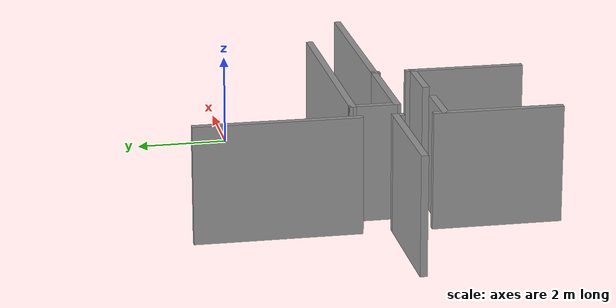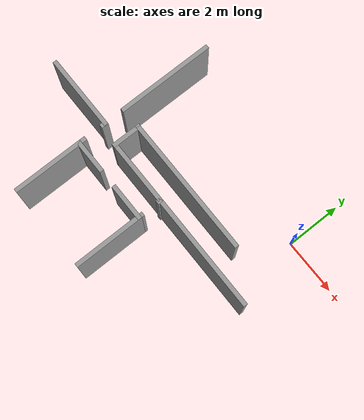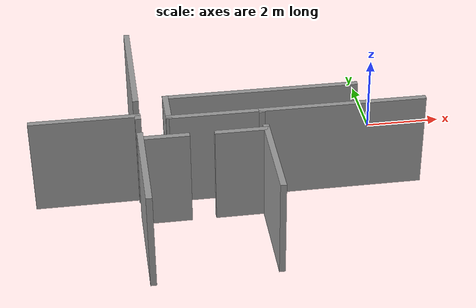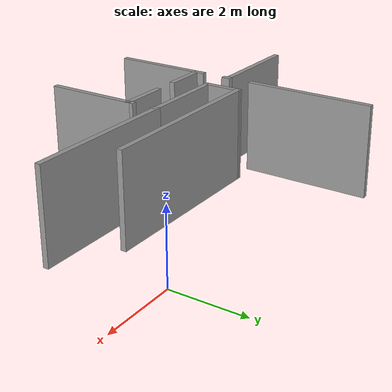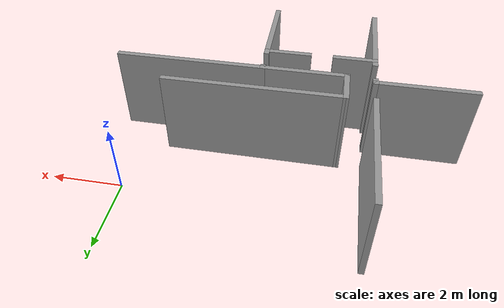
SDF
<sdf version="1.6">
 <model name="melgar_house">
  <link name="Wall_101">
   <pose>-3.42579 -4.781 0 0 0 -1.5708</pose>
   <visual name="Wall_101_Visual">
    <pose>0 0 1.25 0 -0 0</pose>
    <geometry><box><size>2.5 0.15 2.5</size></box></geometry>
    <material>
     <script><uri>file://media/materials/scripts/gazebo.material</uri><name>Gazebo/Grey</name></script>
     <ambient>1 1 1 1</ambient>
     <shader type="pixel"/>
     <diffuse>0.7 0.7 0.7 1</diffuse>
     <specular>0.01 0.01 0.01 1</specular>
     <emissive>0 0 0 1</emissive>
    </material>
    <meta><layer>0</layer></meta>
   </visual>
   <collision name="Wall_101_Collision">
    <pose>0 0 1.25 0 -0 0</pose>
    <geometry><box><size>2.5 0.15 2.5</size></box></geometry>
    <surface>
     <friction>
      <ode><mu>1</mu><mu2>1</mu2><fdir1>0 0 0</fdir1><slip1>0</slip1><slip2>0</slip2></ode>
      <torsional>
       <coefficient>1</coefficient>
       <patch_radius>0</patch_radius>
       <surface_radius>0</surface_radius>
       <use_patch_radius>1</use_patch_radius>
       <ode><slip>0</slip></ode>
      </torsional>
     </friction>
     <bounce><restitution_coefficient>0</restitution_coefficient><threshold>1e+06</threshold></bounce>
     <contact>
      <collide_without_contact>0</collide_without_contact>
      <collide_without_contact_bitmask>1</collide_without_contact_bitmask>
      <collide_bitmask>1</collide_bitmask>
      <ode>
       <soft_cfm>0</soft_cfm>
       <soft_erp>0.2</soft_erp>
       <kp>1e+13</kp>
       <kd>1</kd>
       <max_vel>0.01</max_vel>
       <min_depth>0</min_depth>
      </ode>
      <bullet>
       <split_impulse>1</split_impulse>
       <split_impulse_penetration_threshold>-0.01</split_impulse_penetration_threshold>
       <soft_cfm>0</soft_cfm>
       <soft_erp>0.2</soft_erp>
       <kp>1e+13</kp>
       <kd>1</kd>
      </bullet>
     </contact>
    </surface>
   </collision>
  </link>
  <link name="Wall_113">
   <pose>-3.30354 -1.82115 0 0 -0 0</pose>
   <visual name="Wall_113_Visual">
    <pose>0 0 1.25 0 -0 0</pose>
    <geometry><box><size>5 0.15 2.5</size></box></geometry>
    <material>
     <script><uri>file://media/materials/scripts/gazebo.material</uri><name>Gazebo/Grey</name></script>
     <ambient>1 1 1 1</ambient>
     <shader type="pixel"/>
     <diffuse>0.7 0.7 0.7 1</diffuse>
     <specular>0.01 0.01 0.01 1</specular>
     <emissive>0 0 0 1</emissive>
    </material>
    <meta><layer>0</layer></meta>
   </visual>
   <collision name="Wall_113_Collision">
    <pose>0 0 1.25 0 -0 0</pose>
    <geometry><box><size>5 0.15 2.5</size></box></geometry>
    <surface>
     <friction>
      <ode><mu>1</mu><mu2>1</mu2><fdir1>0 0 0</fdir1><slip1>0</slip1><slip2>0</slip2></ode>
      <torsional>
       <coefficient>1</coefficient>
       <patch_radius>0</patch_radius>
       <surface_radius>0</surface_radius>
       <use_patch_radius>1</use_patch_radius>
       <ode><slip>0</slip></ode>
      </torsional>
     </friction>
     <bounce><restitution_coefficient>0</restitution_coefficient><threshold>1e+06</threshold></bounce>
     <contact>
      <collide_without_contact>0</collide_without_contact>
      <collide_without_contact_bitmask>1</collide_without_contact_bitmask>
      <collide_bitmask>1</collide_bitmask>
      <ode>
       <soft_cfm>0</soft_cfm>
       <soft_erp>0.2</soft_erp>
       <kp>1e+13</kp>
       <kd>1</kd>
       <max_vel>0.01</max_vel>
       <min_depth>0</min_depth>
      </ode>
      <bullet>
       <split_impulse>1</split_impulse>
       <split_impulse_penetration_threshold>-0.01</split_impulse_penetration_threshold>
       <soft_cfm>0</soft_cfm>
       <soft_erp>0.2</soft_erp>
       <kp>1e+13</kp>
       <kd>1</kd>
      </bullet>
     </contact>
    </surface>
   </collision>
  </link>
  <link name="Wall_57">
   <pose>-6.47854 -0.146147 0 0 0 -1.5708</pose>
   <visual name="Wall_57_Visual">
    <pose>0 0 1.25 0 -0 0</pose>
    <geometry><box><size>3.5 0.15 2.5</size></box></geometry>
    <material>
     <script><uri>file://media/materials/scripts/gazebo.material</uri><name>Gazebo/Grey</name></script>
     <ambient>1 1 1 1</ambient>
     <shader type="pixel"/>
     <diffuse>0.7 0.7 0.7 1</diffuse>
     <specular>0.01 0.01 0.01 1</specular>
     <emissive>0 0 0 1</emissive>
    </material>
    <meta><layer>0</layer></meta>
   </visual>
   <collision name="Wall_57_Collision">
    <pose>0 0 1.25 0 -0 0</pose>
    <geometry><box><size>3.5 0.15 2.5</size></box></geometry>
    <surface>
     <friction>
      <ode><mu>1</mu><mu2>1</mu2><fdir1>0 0 0</fdir1><slip1>0</slip1><slip2>0</slip2></ode>
      <torsional>
       <coefficient>1</coefficient>
       <patch_radius>0</patch_radius>
       <surface_radius>0</surface_radius>
       <use_patch_radius>1</use_patch_radius>
       <ode><slip>0</slip></ode>
      </torsional>
     </friction>
     <bounce><restitution_coefficient>0</restitution_coefficient><threshold>1e+06</threshold></bounce>
     <contact>
      <collide_without_contact>0</collide_without_contact>
      <collide_without_contact_bitmask>1</collide_without_contact_bitmask>
      <collide_bitmask>1</collide_bitmask>
      <ode>
       <soft_cfm>0</soft_cfm>
       <soft_erp>0.2</soft_erp>
       <kp>1e+13</kp>
       <kd>1</kd>
       <max_vel>0.01</max_vel>
       <min_depth>0</min_depth>
      </ode>
      <bullet>
       <split_impulse>1</split_impulse>
       <split_impulse_penetration_threshold>-0.01</split_impulse_penetration_threshold>
       <soft_cfm>0</soft_cfm>
       <soft_erp>0.2</soft_erp>
       <kp>1e+13</kp>
       <kd>1</kd>
      </bullet>
     </contact>
    </surface>
   </collision>
  </link>
  <link name="Wall_64">
   <pose>-6.47854 -2.62115 0 0 0 -1.5708</pose>
   <visual name="Wall_64_Visual">
    <pose>0 0 1.25 0 -0 0</pose>
    <geometry><box><size>0.25 0.15 2.5</size></box></geometry>
    <material>
     <script><uri>file://media/materials/scripts/gazebo.material</uri><name>Gazebo/Grey</name></script>
     <ambient>1 1 1 1</ambient>
     <shader type="pixel"/>
     <diffuse>0.7 0.7 0.7 1</diffuse>
     <specular>0.01 0.01 0.01 1</specular>
     <emissive>0 0 0 1</emissive>
    </material>
    <meta><layer>0</layer></meta>
   </visual>
   <collision name="Wall_64_Collision">
    <pose>0 0 1.25 0 -0 0</pose>
    <geometry><box><size>0.25 0.15 2.5</size></box></geometry>
    <surface>
     <friction>
      <ode><mu>1</mu><mu2>1</mu2><fdir1>0 0 0</fdir1><slip1>0</slip1><slip2>0</slip2></ode>
      <torsional>
       <coefficient>1</coefficient>
       <patch_radius>0</patch_radius>
       <surface_radius>0</surface_radius>
       <use_patch_radius>1</use_patch_radius>
       <ode><slip>0</slip></ode>
      </torsional>
     </friction>
     <bounce><restitution_coefficient>0</restitution_coefficient><threshold>1e+06</threshold></bounce>
     <contact>
      <collide_without_contact>0</collide_without_contact>
      <collide_without_contact_bitmask>1</collide_without_contact_bitmask>
      <collide_bitmask>1</collide_bitmask>
      <ode>
       <soft_cfm>0</soft_cfm>
       <soft_erp>0.2</soft_erp>
       <kp>1e+13</kp>
       <kd>1</kd>
       <max_vel>0.01</max_vel>
       <min_depth>0</min_depth>
      </ode>
      <bullet>
       <split_impulse>1</split_impulse>
       <split_impulse_penetration_threshold>-0.01</split_impulse_penetration_threshold>
       <soft_cfm>0</soft_cfm>
       <soft_erp>0.2</soft_erp>
       <kp>1e+13</kp>
       <kd>1</kd>
      </bullet>
     </contact>
    </surface>
   </collision>
  </link>
  <link name="Wall_67">
   <pose>-6.47854 -4.72115 0 0 0 -1.5708</pose>
   <visual name="Wall_67_Visual">
    <pose>0 0 1.25 0 -0 0</pose>
    <geometry><box><size>2.75 0.15 2.5</size></box></geometry>
    <material>
     <script><uri>file://media/materials/scripts/gazebo.material</uri><name>Gazebo/Grey</name></script>
     <ambient>1 1 1 1</ambient>
     <shader type="pixel"/>
     <diffuse>0.7 0.7 0.7 1</diffuse>
     <specular>0.01 0.01 0.01 1</specular>
     <emissive>0 0 0 1</emissive>
    </material>
    <meta><layer>0</layer></meta>
   </visual>
   <collision name="Wall_67_Collision">
    <pose>0 0 1.25 0 -0 0</pose>
    <geometry><box><size>2.75 0.15 2.5</size></box></geometry>
    <surface>
     <friction>
      <ode><mu>1</mu><mu2>1</mu2><fdir1>0 0 0</fdir1><slip1>0</slip1><slip2>0</slip2></ode>
      <torsional>
       <coefficient>1</coefficient>
       <patch_radius>0</patch_radius>
       <surface_radius>0</surface_radius>
       <use_patch_radius>1</use_patch_radius>
       <ode><slip>0</slip></ode>
      </torsional>
     </friction>
     <bounce><restitution_coefficient>0</restitution_coefficient><threshold>1e+06</threshold></bounce>
     <contact>
      <collide_without_contact>0</collide_without_contact>
      <collide_without_contact_bitmask>1</collide_without_contact_bitmask>
      <collide_bitmask>1</collide_bitmask>
      <ode>
       <soft_cfm>0</soft_cfm>
       <soft_erp>0.2</soft_erp>
       <kp>1e+13</kp>
       <kd>1</kd>
       <max_vel>0.01</max_vel>
       <min_depth>0</min_depth>
      </ode>
      <bullet>
       <split_impulse>1</split_impulse>
       <split_impulse_penetration_threshold>-0.01</split_impulse_penetration_threshold>
       <soft_cfm>0</soft_cfm>
       <soft_erp>0.2</soft_erp>
       <kp>1e+13</kp>
       <kd>1</kd>
      </bullet>
     </contact>
    </surface>
   </collision>
  </link>
  <link name="Wall_69">
   <pose>-7.77854 -2.57115 0 0 -0 3.14159</pose>
   <visual name="Wall_69_Visual">
    <pose>0 0 1.25 0 -0 0</pose>
    <geometry><box><size>2.75 0.15 2.5</size></box></geometry>
    <material>
     <script><uri>file://media/materials/scripts/gazebo.material</uri><name>Gazebo/Grey</name></script>
     <ambient>1 1 1 1</ambient>
     <shader type="pixel"/>
     <diffuse>0.7 0.7 0.7 1</diffuse>
     <specular>0.01 0.01 0.01 1</specular>
     <emissive>0 0 0 1</emissive>
    </material>
    <meta><layer>0</layer></meta>
   </visual>
   <collision name="Wall_69_Collision">
    <pose>0 0 1.25 0 -0 0</pose>
    <geometry><box><size>2.75 0.15 2.5</size></box></geometry>
    <surface>
     <friction>
      <ode><mu>1</mu><mu2>1</mu2><fdir1>0 0 0</fdir1><slip1>0</slip1><slip2>0</slip2></ode>
      <torsional>
       <coefficient>1</coefficient>
       <patch_radius>0</patch_radius>
       <surface_radius>0</surface_radius>
       <use_patch_radius>1</use_patch_radius>
       <ode><slip>0</slip></ode>
      </torsional>
     </friction>
     <bounce><restitution_coefficient>0</restitution_coefficient><threshold>1e+06</threshold></bounce>
     <contact>
      <collide_without_contact>0</collide_without_contact>
      <collide_without_contact_bitmask>1</collide_without_contact_bitmask>
      <collide_bitmask>1</collide_bitmask>
      <ode>
       <soft_cfm>0</soft_cfm>
       <soft_erp>0.2</soft_erp>
       <kp>1e+13</kp>
       <kd>1</kd>
       <max_vel>0.01</max_vel>
       <min_depth>0</min_depth>
      </ode>
      <bullet>
       <split_impulse>1</split_impulse>
       <split_impulse_penetration_threshold>-0.01</split_impulse_penetration_threshold>
       <soft_cfm>0</soft_cfm>
       <soft_erp>0.2</soft_erp>
       <kp>1e+13</kp>
       <kd>1</kd>
      </bullet>
     </contact>
    </surface>
   </collision>
  </link>
  <link name="Wall_76">
   <pose>-5.92579 -3.606 0 0 -0 0</pose>
   <visual name="Wall_76_Visual">
    <pose>0 0 1.25 0 -0 0</pose>
    <geometry><box><size>1.25 0.15 2.5</size></box></geometry>
    <material>
     <script><uri>file://media/materials/scripts/gazebo.material</uri><name>Gazebo/Grey</name></script>
     <ambient>1 1 1 1</ambient>
     <shader type="pixel"/>
     <diffuse>0.7 0.7 0.7 1</diffuse>
     <specular>0.01 0.01 0.01 1</specular>
     <emissive>0 0 0 1</emissive>
    </material>
    <meta><layer>0</layer></meta>
   </visual>
   <collision name="Wall_76_Collision">
    <pose>0 0 1.25 0 -0 0</pose>
    <geometry><box><size>1.25 0.15 2.5</size></box></geometry>
    <surface>
     <friction>
      <ode><mu>1</mu><mu2>1</mu2><fdir1>0 0 0</fdir1><slip1>0</slip1><slip2>0</slip2></ode>
      <torsional>
       <coefficient>1</coefficient>
       <patch_radius>0</patch_radius>
       <surface_radius>0</surface_radius>
       <use_patch_radius>1</use_patch_radius>
       <ode><slip>0</slip></ode>
      </torsional>
     </friction>
     <bounce><restitution_coefficient>0</restitution_coefficient><threshold>1e+06</threshold></bounce>
     <contact>
      <collide_without_contact>0</collide_without_contact>
      <collide_without_contact_bitmask>1</collide_without_contact_bitmask>
      <collide_bitmask>1</collide_bitmask>
      <ode>
       <soft_cfm>0</soft_cfm>
       <soft_erp>0.2</soft_erp>
       <kp>1e+13</kp>
       <kd>1</kd>
       <max_vel>0.01</max_vel>
       <min_depth>0</min_depth>
      </ode>
      <bullet>
       <split_impulse>1</split_impulse>
       <split_impulse_penetration_threshold>-0.01</split_impulse_penetration_threshold>
       <soft_cfm>0</soft_cfm>
       <soft_erp>0.2</soft_erp>
       <kp>1e+13</kp>
       <kd>1</kd>
      </bullet>
     </contact>
    </surface>
   </collision>
  </link>
  <link name="Wall_78">
   <pose>-4.02579 -3.606 0 0 -0 0</pose>
   <visual name="Wall_78_Visual">
    <pose>0 0 1.25 0 -0 0</pose>
    <geometry><box><size>1.35 0.15 2.5</size></box></geometry>
    <material>
     <script><uri>file://media/materials/scripts/gazebo.material</uri><name>Gazebo/Grey</name></script>
     <ambient>1 1 1 1</ambient>
     <shader type="pixel"/>
     <diffuse>0.7 0.7 0.7 1</diffuse>
     <specular>0.01 0.01 0.01 1</specular>
     <emissive>0 0 0 1</emissive>
    </material>
    <meta><layer>0</layer></meta>
   </visual>
   <collision name="Wall_78_Collision">
    <pose>0 0 1.25 0 -0 0</pose>
    <geometry><box><size>1.35 0.15 2.5</size></box></geometry>
    <surface>
     <friction>
      <ode><mu>1</mu><mu2>1</mu2><fdir1>0 0 0</fdir1><slip1>0</slip1><slip2>0</slip2></ode>
      <torsional>
       <coefficient>1</coefficient>
       <patch_radius>0</patch_radius>
       <surface_radius>0</surface_radius>
       <use_patch_radius>1</use_patch_radius>
       <ode><slip>0</slip></ode>
      </torsional>
     </friction>
     <bounce><restitution_coefficient>0</restitution_coefficient><threshold>1e+06</threshold></bounce>
     <contact>
      <collide_without_contact>0</collide_without_contact>
      <collide_without_contact_bitmask>1</collide_without_contact_bitmask>
      <collide_bitmask>1</collide_bitmask>
      <ode>
       <soft_cfm>0</soft_cfm>
       <soft_erp>0.2</soft_erp>
       <kp>1e+13</kp>
       <kd>1</kd>
       <max_vel>0.01</max_vel>
       <min_depth>0</min_depth>
      </ode>
      <bullet>
       <split_impulse>1</split_impulse>
       <split_impulse_penetration_threshold>-0.01</split_impulse_penetration_threshold>
       <soft_cfm>0</soft_cfm>
       <soft_erp>0.2</soft_erp>
       <kp>1e+13</kp>
       <kd>1</kd>
      </bullet>
     </contact>
    </surface>
   </collision>
  </link>
  <link name="Wall_79">
   <pose>-3.42579 -3.556 0 0 -0 1.5708</pose>
   <visual name="Wall_79_Visual">
    <pose>0 0 1.25 0 -0 0</pose>
    <geometry><box><size>0.25 0.15 2.5</size></box></geometry>
    <material>
     <script><uri>file://media/materials/scripts/gazebo.material</uri><name>Gazebo/Grey</name></script>
     <ambient>1 1 1 1</ambient>
     <shader type="pixel"/>
     <diffuse>0.7 0.7 0.7 1</diffuse>
     <specular>0.01 0.01 0.01 1</specular>
     <emissive>0 0 0 1</emissive>
    </material>
    <meta><layer>0</layer></meta>
   </visual>
   <collision name="Wall_79_Collision">
    <pose>0 0 1.25 0 -0 0</pose>
    <geometry><box><size>0.25 0.15 2.5</size></box></geometry>
    <surface>
     <friction>
      <ode><mu>1</mu><mu2>1</mu2><fdir1>0 0 0</fdir1><slip1>0</slip1><slip2>0</slip2></ode>
      <torsional>
       <coefficient>1</coefficient>
       <patch_radius>0</patch_radius>
       <surface_radius>0</surface_radius>
       <use_patch_radius>1</use_patch_radius>
       <ode><slip>0</slip></ode>
      </torsional>
     </friction>
     <bounce><restitution_coefficient>0</restitution_coefficient><threshold>1e+06</threshold></bounce>
     <contact>
      <collide_without_contact>0</collide_without_contact>
      <collide_without_contact_bitmask>1</collide_without_contact_bitmask>
      <collide_bitmask>1</collide_bitmask>
      <ode>
       <soft_cfm>0</soft_cfm>
       <soft_erp>0.2</soft_erp>
       <kp>1e+13</kp>
       <kd>1</kd>
       <max_vel>0.01</max_vel>
       <min_depth>0</min_depth>
      </ode>
      <bullet>
       <split_impulse>1</split_impulse>
       <split_impulse_penetration_threshold>-0.01</split_impulse_penetration_threshold>
       <soft_cfm>0</soft_cfm>
       <soft_erp>0.2</soft_erp>
       <kp>1e+13</kp>
       <kd>1</kd>
      </bullet>
     </contact>
    </surface>
   </collision>
  </link>
  <link name="Wall_81">
   <pose>-3.42585 -2.78079 0 0 0 -1.56808</pose>
   <visual name="Wall_81_Visual">
    <pose>0 0 1.25 0 -0 0</pose>
    <geometry><box><size>0.2 0.15 2.5</size></box></geometry>
    <material>
     <script><uri>file://media/materials/scripts/gazebo.material</uri><name>Gazebo/Grey</name></script>
     <ambient>1 1 1 1</ambient>
     <shader type="pixel"/>
     <diffuse>0.7 0.7 0.7 1</diffuse>
     <specular>0.01 0.01 0.01 1</specular>
     <emissive>0 0 0 1</emissive>
    </material>
    <meta><layer>0</layer></meta>
   </visual>
   <collision name="Wall_81_Collision">
    <pose>0 0 1.25 0 -0 0</pose>
    <geometry><box><size>0.2 0.15 2.5</size></box></geometry>
    <surface>
     <friction>
      <ode><mu>1</mu><mu2>1</mu2><fdir1>0 0 0</fdir1><slip1>0</slip1><slip2>0</slip2></ode>
      <torsional>
       <coefficient>1</coefficient>
       <patch_radius>0</patch_radius>
       <surface_radius>0</surface_radius>
       <use_patch_radius>1</use_patch_radius>
       <ode><slip>0</slip></ode>
      </torsional>
     </friction>
     <bounce><restitution_coefficient>0</restitution_coefficient><threshold>1e+06</threshold></bounce>
     <contact>
      <collide_without_contact>0</collide_without_contact>
      <collide_without_contact_bitmask>1</collide_without_contact_bitmask>
      <collide_bitmask>1</collide_bitmask>
      <ode>
       <soft_cfm>0</soft_cfm>
       <soft_erp>0.2</soft_erp>
       <kp>1e+13</kp>
       <kd>1</kd>
       <max_vel>0.01</max_vel>
       <min_depth>0</min_depth>
      </ode>
      <bullet>
       <split_impulse>1</split_impulse>
       <split_impulse_penetration_threshold>-0.01</split_impulse_penetration_threshold>
       <soft_cfm>0</soft_cfm>
       <soft_erp>0.2</soft_erp>
       <kp>1e+13</kp>
       <kd>1</kd>
      </bullet>
     </contact>
    </surface>
   </collision>
  </link>
  <link name="Wall_85">
   <pose>-4.57592 -2.75557 0 0 -0 3.14159</pose>
   <visual name="Wall_85_Visual">
    <pose>0 0 1.25 0 -0 0</pose>
    <geometry><box><size>2.45 0.15 2.5</size></box></geometry>
    <material>
     <script><uri>file://media/materials/scripts/gazebo.material</uri><name>Gazebo/Grey</name></script>
     <ambient>1 1 1 1</ambient>
     <shader type="pixel"/>
     <diffuse>0.7 0.7 0.7 1</diffuse>
     <specular>0.01 0.01 0.01 1</specular>
     <emissive>0 0 0 1</emissive>
    </material>
    <meta><layer>0</layer></meta>
   </visual>
   <collision name="Wall_85_Collision">
    <pose>0 0 1.25 0 -0 0</pose>
    <geometry><box><size>2.45 0.15 2.5</size></box></geometry>
    <surface>
     <friction>
      <ode><mu>1</mu><mu2>1</mu2><fdir1>0 0 0</fdir1><slip1>0</slip1><slip2>0</slip2></ode>
      <torsional>
       <coefficient>1</coefficient>
       <patch_radius>0</patch_radius>
       <surface_radius>0</surface_radius>
       <use_patch_radius>1</use_patch_radius>
       <ode><slip>0</slip></ode>
      </torsional>
     </friction>
     <bounce><restitution_coefficient>0</restitution_coefficient><threshold>1e+06</threshold></bounce>
     <contact>
      <collide_without_contact>0</collide_without_contact>
      <collide_without_contact_bitmask>1</collide_without_contact_bitmask>
      <collide_bitmask>1</collide_bitmask>
      <ode>
       <soft_cfm>0</soft_cfm>
       <soft_erp>0.2</soft_erp>
       <kp>1e+13</kp>
       <kd>1</kd>
       <max_vel>0.01</max_vel>
       <min_depth>0</min_depth>
      </ode>
      <bullet>
       <split_impulse>1</split_impulse>
       <split_impulse_penetration_threshold>-0.01</split_impulse_penetration_threshold>
       <soft_cfm>0</soft_cfm>
       <soft_erp>0.2</soft_erp>
       <kp>1e+13</kp>
       <kd>1</kd>
      </bullet>
     </contact>
    </surface>
   </collision>
  </link>
  <link name="Wall_95">
   <pose>-5.72723 -2.28836 0 0 0 -1.568</pose>
   <visual name="Wall_95_Visual">
    <pose>0 0 1.25 0 -0 0</pose>
    <geometry><box><size>1.08443 0.15 2.5</size></box></geometry>
    <material>
     <script><uri>file://media/materials/scripts/gazebo.material</uri><name>Gazebo/Grey</name></script>
     <ambient>1 1 1 1</ambient>
     <shader type="pixel"/>
     <diffuse>0.7 0.7 0.7 1</diffuse>
     <specular>0.01 0.01 0.01 1</specular>
     <emissive>0 0 0 1</emissive>
    </material>
    <meta><layer>0</layer></meta>
   </visual>
   <collision name="Wall_95_Collision">
    <pose>0 0 1.25 0 -0 0</pose>
    <geometry><box><size>1.08443 0.15 2.5</size></box></geometry>
    <surface>
     <friction>
      <ode><mu>1</mu><mu2>1</mu2><fdir1>0 0 0</fdir1><slip1>0</slip1><slip2>0</slip2></ode>
      <torsional>
       <coefficient>1</coefficient>
       <patch_radius>0</patch_radius>
       <surface_radius>0</surface_radius>
       <use_patch_radius>1</use_patch_radius>
       <ode><slip>0</slip></ode>
      </torsional>
     </friction>
     <bounce><restitution_coefficient>0</restitution_coefficient><threshold>1e+06</threshold></bounce>
     <contact>
      <collide_without_contact>0</collide_without_contact>
      <collide_without_contact_bitmask>1</collide_without_contact_bitmask>
      <collide_bitmask>1</collide_bitmask>
      <ode>
       <soft_cfm>0</soft_cfm>
       <soft_erp>0.2</soft_erp>
       <kp>1e+13</kp>
       <kd>1</kd>
       <max_vel>0.01</max_vel>
       <min_depth>0</min_depth>
      </ode>
      <bullet>
       <split_impulse>1</split_impulse>
       <split_impulse_penetration_threshold>-0.01</split_impulse_penetration_threshold>
       <soft_cfm>0</soft_cfm>
       <soft_erp>0.2</soft_erp>
       <kp>1e+13</kp>
       <kd>1</kd>
      </bullet>
     </contact>
    </surface>
   </collision>
  </link>
  <link name="Wall_97">
   <pose>-1.37592 -2.75557 0 0 -0 0</pose>
   <visual name="Wall_97_Visual">
    <pose>0 0 1.25 0 -0 0</pose>
    <geometry><box><size>4.25 0.15 2.5</size></box></geometry>
    <material>
     <script><uri>file://media/materials/scripts/gazebo.material</uri><name>Gazebo/Grey</name></script>
     <ambient>1 1 1 1</ambient>
     <shader type="pixel"/>
     <diffuse>0.7 0.7 0.7 1</diffuse>
     <specular>0.01 0.01 0.01 1</specular>
     <emissive>0 0 0 1</emissive>
    </material>
    <meta><layer>0</layer></meta>
   </visual>
   <collision name="Wall_97_Collision">
    <pose>0 0 1.25 0 -0 0</pose>
    <geometry><box><size>4.25 0.15 2.5</size></box></geometry>
    <surface>
     <friction>
      <ode><mu>1</mu><mu2>1</mu2><fdir1>0 0 0</fdir1><slip1>0</slip1><slip2>0</slip2></ode>
      <torsional>
       <coefficient>1</coefficient>
       <patch_radius>0</patch_radius>
       <surface_radius>0</surface_radius>
       <use_patch_radius>1</use_patch_radius>
       <ode><slip>0</slip></ode>
      </torsional>
     </friction>
     <bounce><restitution_coefficient>0</restitution_coefficient><threshold>1e+06</threshold></bounce>
     <contact>
      <collide_without_contact>0</collide_without_contact>
      <collide_without_contact_bitmask>1</collide_without_contact_bitmask>
      <collide_bitmask>1</collide_bitmask>
      <ode>
       <soft_cfm>0</soft_cfm>
       <soft_erp>0.2</soft_erp>
       <kp>1e+13</kp>
       <kd>1</kd>
       <max_vel>0.01</max_vel>
       <min_depth>0</min_depth>
      </ode>
      <bullet>
       <split_impulse>1</split_impulse>
       <split_impulse_penetration_threshold>-0.01</split_impulse_penetration_threshold>
       <soft_cfm>0</soft_cfm>
       <soft_erp>0.2</soft_erp>
       <kp>1e+13</kp>
       <kd>1</kd>
      </bullet>
     </contact>
    </surface>
   </collision>
  </link>
  <static>1</static>
 </model>
</sdf>
